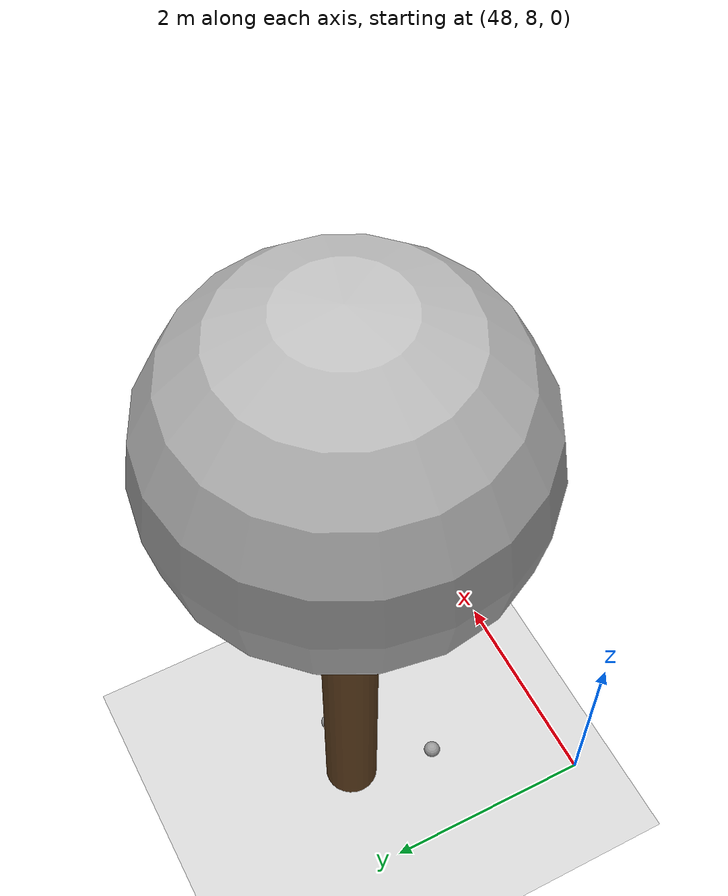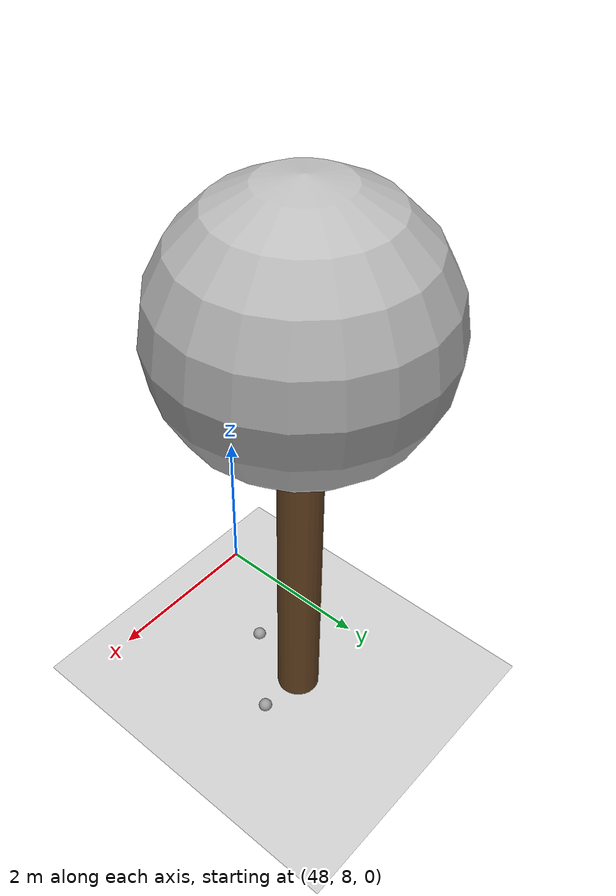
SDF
<sdf version="1.7">
 <world name="default">
  <model name="ground_plane">
   <static>1</static>
   <link name="link">
    <collision name="collision">
     <geometry><plane><normal>0 0 1</normal><size>100 100</size></plane></geometry>
     <surface>
      <contact><collide_bitmask>65535</collide_bitmask></contact>
      <friction><ode><mu>100</mu><mu2>50</mu2></ode></friction>
     </surface>
    </collision>
    <visual name="visual">
     <cast_shadows>0</cast_shadows>
     <geometry><plane><normal>0 0 1</normal><size>100 100</size></plane></geometry>
     <material>
      <script><uri>file://media/materials/scripts/gazebo.material</uri><name>Gazebo/Grey</name></script>
     </material>
    </visual>
   </link>
  </model>
  <model name="tree_simple_72">
   <static>1</static>
   <link name="link">
    <pose>0 0 0.1 0 -0 0</pose>
    <inertial>
     <mass>666</mass>
     <inertia>
      <ixx>0.0861167</ixx>
      <ixy>0</ixy>
      <ixz>0</ixz>
      <iyy>0.0861167</iyy>
      <iyz>0</iyz>
      <izz>0.0861167</izz>
     </inertia>
    </inertial>
    <collision name="collision_trunk">
     <pose>0 0 2 0 -0 0</pose>
     <geometry><cylinder><radius>0.25</radius><length>4</length></cylinder></geometry>
     <surface>
      <contact>
       <poissons_ratio>0.347</poissons_ratio>
       <elastic_modulus>8.8e+09</elastic_modulus>
       <ode><kp>100000</kp><kd>100</kd><max_vel>100</max_vel><min_depth>0.001</min_depth></ode>
      </contact>
      <friction>
       <torsional>
        <coefficient>1</coefficient>
        <use_patch_radius>0</use_patch_radius>
        <surface_radius>0.01</surface_radius>
       </torsional>
      </friction>
     </surface>
    </collision>
    <collision name="collision_treetop">
     <pose>0 0 5.2 0 -0 0</pose>
     <geometry><sphere><radius>1.5</radius></sphere></geometry>
     <surface>
      <contact>
       <poissons_ratio>0.347</poissons_ratio>
       <elastic_modulus>8.8e+09</elastic_modulus>
       <ode><kp>100000</kp><kd>100</kd><max_vel>100</max_vel><min_depth>0.001</min_depth></ode>
      </contact>
      <friction>
       <torsional>
        <coefficient>1</coefficient>
        <use_patch_radius>0</use_patch_radius>
        <surface_radius>0.01</surface_radius>
       </torsional>
      </friction>
     </surface>
    </collision>
    <visual name="trunk">
     <pose>0 0 2 0 -0 0</pose>
     <geometry><cylinder><radius>0.25</radius><length>4</length></cylinder></geometry>
     <material>
      <script>
       <uri>model://tree_simple/scripts</uri>
       <uri>model://tree_simple/materials/textures</uri>
       <name>TreeSimple/Trunk</name>
      </script>
     </material>
    </visual>
    <visual name="treetop">
     <pose>0 0 5.2 0 -0 0</pose>
     <geometry><sphere><radius>1.5</radius></sphere></geometry>
     <material>
      <script>
       <uri>model://tree_simple/scripts</uri>
       <uri>model://tree_simple/materials/textures</uri>
       <name>TreeSimple/Treetop</name>
      </script>
     </material>
    </visual>
   </link>
   <pose>49 10 -0.1 0 -0 0</pose>
  </model>
  <model name="seed_black_67">
   <link name="link">
    <inertial>
     <mass>1</mass>
     <inertia><ixx>0.1</ixx><ixy>0</ixy><ixz>0</ixz><iyy>0.1</iyy><iyz>0</iyz><izz>0.1</izz></inertia>
    </inertial>
    <visual name="visual">
     <geometry><sphere><radius>0.08</radius></sphere></geometry>
     <material>
      <script><name>Gazebo/Grey</name><uri>file://media/materials/scripts/gazebo.material</uri></script>
      <shader type="pixel"><normal_map>__default__</normal_map></shader>
      <ambient>0 0 0 1</ambient>
      <diffuse>0.7 0.7 0.7 1</diffuse>
      <specular>0.01 0.01 0.01 1</specular>
      <emissive>0 0 0 1</emissive>
     </material>
    </visual>
    <collision name="collision">
     <geometry><sphere><radius>0.0005</radius></sphere></geometry>
     <surface>
      <friction>
       <ode><mu>1</mu><mu2>1</mu2><fdir1>0 0 0</fdir1><slip1>0</slip1><slip2>0</slip2></ode>
       <torsional>
        <coefficient>1</coefficient>
        <patch_radius>0</patch_radius>
        <surface_radius>0</surface_radius>
        <use_patch_radius>1</use_patch_radius>
        <ode><slip>0</slip></ode>
       </torsional>
      </friction>
      <bounce><restitution_coefficient>0</restitution_coefficient><threshold>1e+06</threshold></bounce>
      <contact>
       <collide_without_contact>0</collide_without_contact>
       <collide_without_contact_bitmask>1</collide_without_contact_bitmask>
       <collide_bitmask>1</collide_bitmask>
       <ode>
        <soft_cfm>0</soft_cfm>
        <soft_erp>0.2</soft_erp>
        <kp>1e+13</kp>
        <kd>1</kd>
        <max_vel>0.01</max_vel>
        <min_depth>0</min_depth>
       </ode>
       <bullet>
        <split_impulse>1</split_impulse>
        <split_impulse_penetration_threshold>-0.01</split_impulse_penetration_threshold>
        <soft_cfm>0</soft_cfm>
        <soft_erp>0.2</soft_erp>
        <kp>1e+13</kp>
        <kd>1</kd>
       </bullet>
      </contact>
     </surface>
    </collision>
   </link>
   <static>0</static>
   <pose>48.814 9.18501 0.0005 0 -0 0</pose>
  </model>
  <model name="seed_black_68">
   <link name="link">
    <inertial>
     <mass>1</mass>
     <inertia><ixx>0.1</ixx><ixy>0</ixy><ixz>0</ixz><iyy>0.1</iyy><iyz>0</iyz><izz>0.1</izz></inertia>
    </inertial>
    <visual name="visual">
     <geometry><sphere><radius>0.08</radius></sphere></geometry>
     <material>
      <script><name>Gazebo/Grey</name><uri>file://media/materials/scripts/gazebo.material</uri></script>
      <shader type="pixel"><normal_map>__default__</normal_map></shader>
      <ambient>0 0 0 1</ambient>
      <diffuse>0.7 0.7 0.7 1</diffuse>
      <specular>0.01 0.01 0.01 1</specular>
      <emissive>0 0 0 1</emissive>
     </material>
    </visual>
    <collision name="collision">
     <geometry><sphere><radius>0.0005</radius></sphere></geometry>
     <surface>
      <friction>
       <ode><mu>1</mu><mu2>1</mu2><fdir1>0 0 0</fdir1><slip1>0</slip1><slip2>0</slip2></ode>
       <torsional>
        <coefficient>1</coefficient>
        <patch_radius>0</patch_radius>
        <surface_radius>0</surface_radius>
        <use_patch_radius>1</use_patch_radius>
        <ode><slip>0</slip></ode>
       </torsional>
      </friction>
      <bounce><restitution_coefficient>0</restitution_coefficient><threshold>1e+06</threshold></bounce>
      <contact>
       <collide_without_contact>0</collide_without_contact>
       <collide_without_contact_bitmask>1</collide_without_contact_bitmask>
       <collide_bitmask>1</collide_bitmask>
       <ode>
        <soft_cfm>0</soft_cfm>
        <soft_erp>0.2</soft_erp>
        <kp>1e+13</kp>
        <kd>1</kd>
        <max_vel>0.01</max_vel>
        <min_depth>0</min_depth>
       </ode>
       <bullet>
        <split_impulse>1</split_impulse>
        <split_impulse_penetration_threshold>-0.01</split_impulse_penetration_threshold>
        <soft_cfm>0</soft_cfm>
        <soft_erp>0.2</soft_erp>
        <kp>1e+13</kp>
        <kd>1</kd>
       </bullet>
      </contact>
     </surface>
    </collision>
   </link>
   <static>0</static>
   <pose>49.5636 9.96482 0.0005 0 -0 0</pose>
  </model>
 </world>
</sdf>
